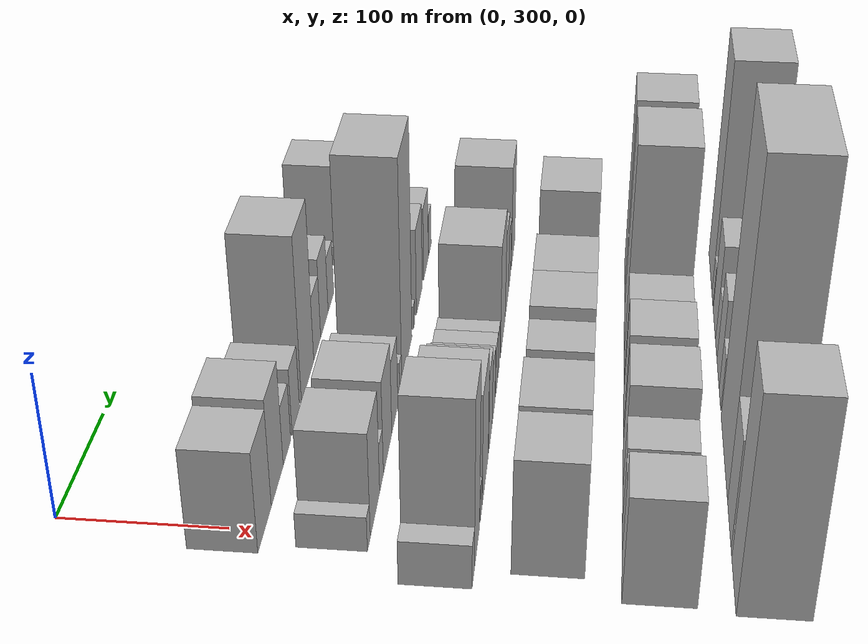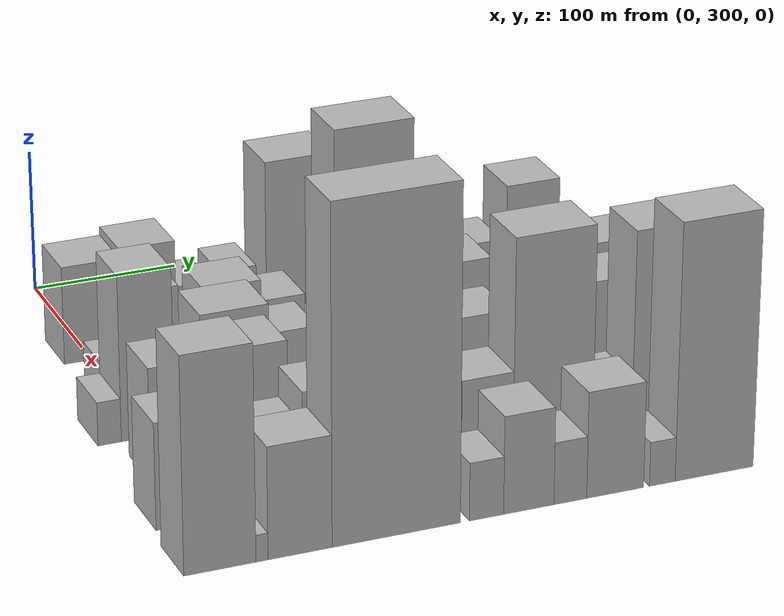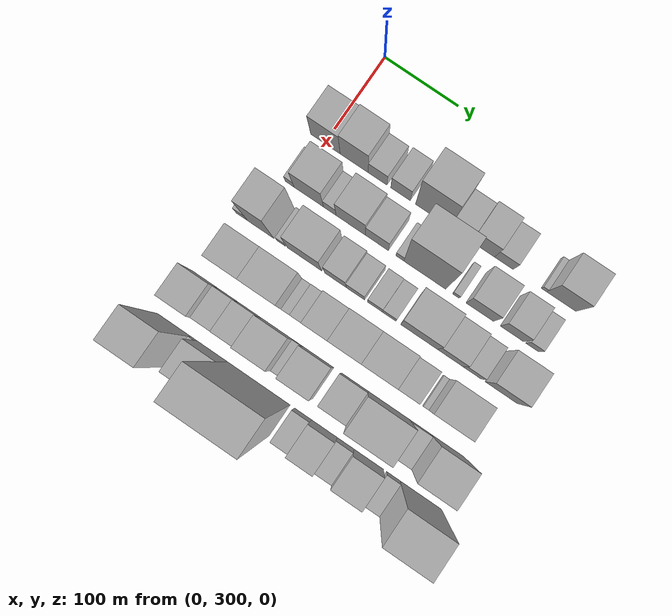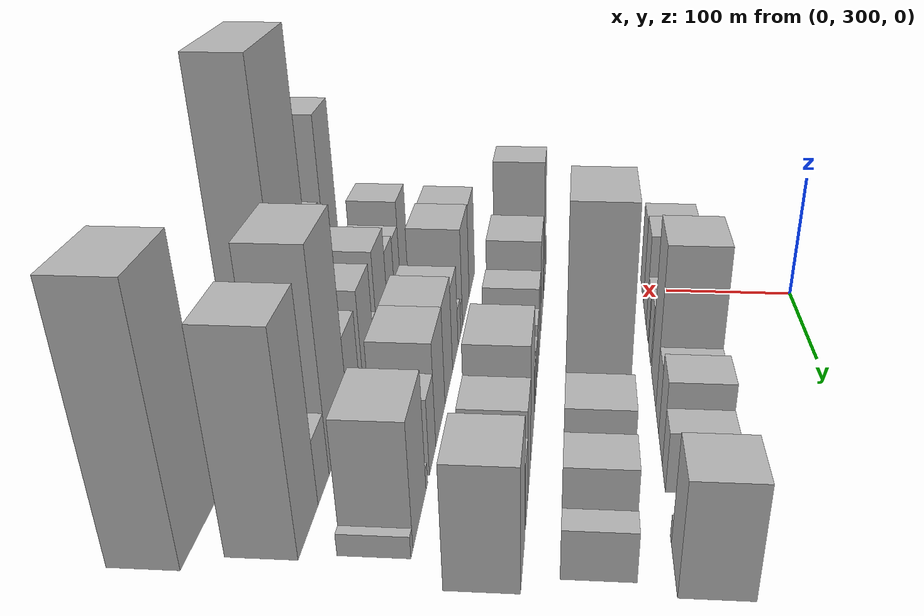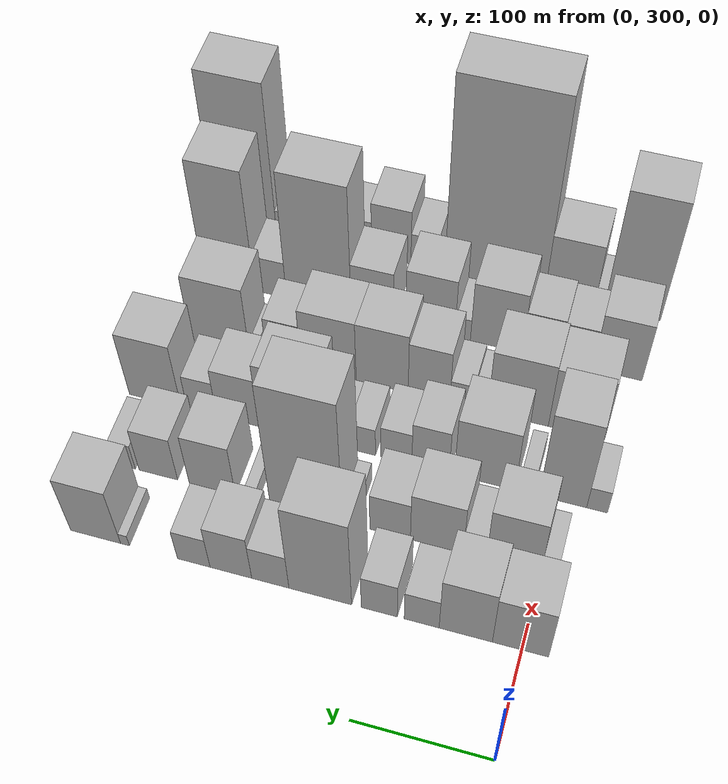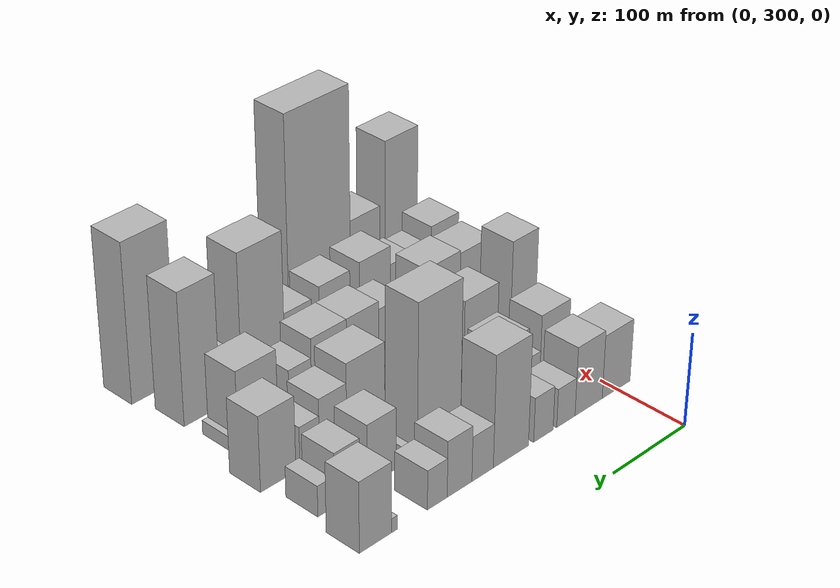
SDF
<sdf version="1.6">
 <world name="default">
  <model name="building_36">
   <static>1</static>
   <pose>100.0000 301.1761 0 0.000000 0.000000 0.000000</pose>
   <link name="link">
    <pose>0 0 34.50 0 0 0</pose>
    <collision name="collision"><geometry><box><size>40.0000 39.7738 69.0000</size></box></geometry></collision>
    <visual name="visual">
     <cast_shadows>0</cast_shadows>
     <geometry><box><size>40.0000 39.7738 69.0000</size></box></geometry>
     <material>
      <script>
       <uri>model://HANNAS_wall/materials/scripts</uri>
       <uri>model://HANNAS_wall/materials/textures</uri>
       <name>vrc/HANNAS_wall</name>
      </script>
     </material>
    </visual>
   </link>
  </model>
  <model name="building_37">
   <static>1</static>
   <pose>100.0000 340.0397 0 0.000000 0.000000 0.000000</pose>
   <link name="link">
    <pose>0 0 37.50 0 0 0</pose>
    <collision name="collision"><geometry><box><size>40.0000 37.9533 75.0000</size></box></geometry></collision>
    <visual name="visual">
     <cast_shadows>0</cast_shadows>
     <geometry><box><size>40.0000 37.9533 75.0000</size></box></geometry>
     <material>
      <script>
       <uri>model://HANNAS_wall/materials/scripts</uri>
       <uri>model://HANNAS_wall/materials/textures</uri>
       <name>vrc/HANNAS_wall</name>
      </script>
     </material>
    </visual>
   </link>
  </model>
  <model name="building_38">
   <static>1</static>
   <pose>100.0000 371.5802 0 0.000000 0.000000 0.000000</pose>
   <link name="link">
    <pose>0 0 21.00 0 0 0</pose>
    <collision name="collision"><geometry><box><size>40.0000 25.1276 42.0000</size></box></geometry></collision>
    <visual name="visual">
     <cast_shadows>0</cast_shadows>
     <geometry><box><size>40.0000 25.1276 42.0000</size></box></geometry>
     <material>
      <script>
       <uri>model://HANNAS_wall/materials/scripts</uri>
       <uri>model://HANNAS_wall/materials/textures</uri>
       <name>vrc/HANNAS_wall</name>
      </script>
     </material>
    </visual>
   </link>
  </model>
  <model name="building_39">
   <static>1</static>
   <pose>100.0000 402.2355 0 0.000000 0.000000 0.000000</pose>
   <link name="link">
    <pose>0 0 24.00 0 0 0</pose>
    <collision name="collision"><geometry><box><size>40.0000 26.1829 48.0000</size></box></geometry></collision>
    <visual name="visual">
     <cast_shadows>0</cast_shadows>
     <geometry><box><size>40.0000 26.1829 48.0000</size></box></geometry>
     <material>
      <script>
       <uri>model://HANNAS_wall/materials/scripts</uri>
       <uri>model://HANNAS_wall/materials/textures</uri>
       <name>vrc/HANNAS_wall</name>
      </script>
     </material>
    </visual>
   </link>
  </model>
  <model name="building_40">
   <static>1</static>
   <pose>100.0000 445.4357 0 0.000000 0.000000 0.000000</pose>
   <link name="link">
    <pose>0 0 60.00 0 0 0</pose>
    <collision name="collision"><geometry><box><size>40.0000 46.2174 120.0000</size></box></geometry></collision>
    <visual name="visual">
     <cast_shadows>0</cast_shadows>
     <geometry><box><size>40.0000 46.2174 120.0000</size></box></geometry>
     <material>
      <script>
       <uri>model://HANNAS_wall/materials/scripts</uri>
       <uri>model://HANNAS_wall/materials/textures</uri>
       <name>vrc/HANNAS_wall</name>
      </script>
     </material>
    </visual>
   </link>
  </model>
  <model name="building_41">
   <static>1</static>
   <pose>100.0000 482.3747 0 0.000000 0.000000 0.000000</pose>
   <link name="link">
    <pose>0 0 24.00 0 0 0</pose>
    <collision name="collision"><geometry><box><size>40.0000 27.6606 48.0000</size></box></geometry></collision>
    <visual name="visual">
     <cast_shadows>0</cast_shadows>
     <geometry><box><size>40.0000 27.6606 48.0000</size></box></geometry>
     <material>
      <script>
       <uri>model://HANNAS_wall/materials/scripts</uri>
       <uri>model://HANNAS_wall/materials/textures</uri>
       <name>vrc/HANNAS_wall</name>
      </script>
     </material>
    </visual>
   </link>
  </model>
  <model name="building_42">
   <static>1</static>
   <pose>100.0000 511.8867 0 0.000000 0.000000 0.000000</pose>
   <link name="link">
    <pose>0 0 30.00 0 0 0</pose>
    <collision name="collision"><geometry><box><size>40.0000 31.3634 60.0000</size></box></geometry></collision>
    <visual name="visual">
     <cast_shadows>0</cast_shadows>
     <geometry><box><size>40.0000 31.3634 60.0000</size></box></geometry>
     <material>
      <script>
       <uri>model://HANNAS_wall/materials/scripts</uri>
       <uri>model://HANNAS_wall/materials/textures</uri>
       <name>vrc/HANNAS_wall</name>
      </script>
     </material>
    </visual>
   </link>
  </model>
  <model name="building_43">
   <static>1</static>
   <pose>100.0000 539.8945 0 0.000000 0.000000 0.000000</pose>
   <link name="link">
    <pose>0 0 21.00 0 0 0</pose>
    <collision name="collision"><geometry><box><size>40.0000 24.6521 42.0000</size></box></geometry></collision>
    <visual name="visual">
     <cast_shadows>0</cast_shadows>
     <geometry><box><size>40.0000 24.6521 42.0000</size></box></geometry>
     <material>
      <script>
       <uri>model://HANNAS_wall/materials/scripts</uri>
       <uri>model://HANNAS_wall/materials/textures</uri>
       <name>vrc/HANNAS_wall</name>
      </script>
     </material>
    </visual>
   </link>
  </model>
  <model name="building_44">
   <static>1</static>
   <pose>100.0000 592.3509 0 0.000000 0.000000 0.000000</pose>
   <link name="link">
    <pose>0 0 7.50 0 0 0</pose>
    <collision name="collision"><geometry><box><size>40.0000 6.7535 15.0000</size></box></geometry></collision>
    <visual name="visual">
     <cast_shadows>0</cast_shadows>
     <geometry><box><size>40.0000 6.7535 15.0000</size></box></geometry>
     <material>
      <script>
       <uri>model://HANNAS_wall/materials/scripts</uri>
       <uri>model://HANNAS_wall/materials/textures</uri>
       <name>vrc/HANNAS_wall</name>
      </script>
     </material>
    </visual>
   </link>
  </model>
  <model name="building_45">
   <static>1</static>
   <pose>100.0000 615.0703 0 0.000000 0.000000 0.000000</pose>
   <link name="link">
    <pose>0 0 37.50 0 0 0</pose>
    <collision name="collision"><geometry><box><size>40.0000 38.6853 75.0000</size></box></geometry></collision>
    <visual name="visual">
     <cast_shadows>0</cast_shadows>
     <geometry><box><size>40.0000 38.6853 75.0000</size></box></geometry>
     <material>
      <script>
       <uri>model://HANNAS_wall/materials/scripts</uri>
       <uri>model://HANNAS_wall/materials/textures</uri>
       <name>vrc/HANNAS_wall</name>
      </script>
     </material>
    </visual>
   </link>
  </model>
  <model name="building_89">
   <static>1</static>
   <pose>160.0000 294.1073 0 0.000000 0.000000 0.000000</pose>
   <link name="link">
    <pose>0 0 12.00 0 0 0</pose>
    <collision name="collision"><geometry><box><size>40.0000 11.7521 24.0000</size></box></geometry></collision>
    <visual name="visual">
     <cast_shadows>0</cast_shadows>
     <geometry><box><size>40.0000 11.7521 24.0000</size></box></geometry>
     <material>
      <script>
       <uri>model://HANNAS_wall/materials/scripts</uri>
       <uri>model://HANNAS_wall/materials/textures</uri>
       <name>vrc/HANNAS_wall</name>
      </script>
     </material>
    </visual>
   </link>
  </model>
  <model name="building_90">
   <static>1</static>
   <pose>160.0000 319.9090 0 0.000000 0.000000 0.000000</pose>
   <link name="link">
    <pose>0 0 36.00 0 0 0</pose>
    <collision name="collision"><geometry><box><size>40.0000 39.8512 72.0000</size></box></geometry></collision>
    <visual name="visual">
     <cast_shadows>0</cast_shadows>
     <geometry><box><size>40.0000 39.8512 72.0000</size></box></geometry>
     <material>
      <script>
       <uri>model://HANNAS_wall/materials/scripts</uri>
       <uri>model://HANNAS_wall/materials/textures</uri>
       <name>vrc/HANNAS_wall</name>
      </script>
     </material>
    </visual>
   </link>
  </model>
  <model name="building_91">
   <static>1</static>
   <pose>160.0000 348.3207 0 0.000000 0.000000 0.000000</pose>
   <link name="link">
    <pose>0 0 16.50 0 0 0</pose>
    <collision name="collision"><geometry><box><size>40.0000 16.9724 33.0000</size></box></geometry></collision>
    <visual name="visual">
     <cast_shadows>0</cast_shadows>
     <geometry><box><size>40.0000 16.9724 33.0000</size></box></geometry>
     <material>
      <script>
       <uri>model://HANNAS_wall/materials/scripts</uri>
       <uri>model://HANNAS_wall/materials/textures</uri>
       <name>vrc/HANNAS_wall</name>
      </script>
     </material>
    </visual>
   </link>
  </model>
  <model name="building_92">
   <static>1</static>
   <pose>160.0000 376.4871 0 0.000000 0.000000 0.000000</pose>
   <link name="link">
    <pose>0 0 33.00 0 0 0</pose>
    <collision name="collision"><geometry><box><size>40.0000 39.3603 66.0000</size></box></geometry></collision>
    <visual name="visual">
     <cast_shadows>0</cast_shadows>
     <geometry><box><size>40.0000 39.3603 66.0000</size></box></geometry>
     <material>
      <script>
       <uri>model://HANNAS_wall/materials/scripts</uri>
       <uri>model://HANNAS_wall/materials/textures</uri>
       <name>vrc/HANNAS_wall</name>
      </script>
     </material>
    </visual>
   </link>
  </model>
  <model name="building_93">
   <static>1</static>
   <pose>160.0000 411.3429 0 0.000000 0.000000 0.000000</pose>
   <link name="link">
    <pose>0 0 25.50 0 0 0</pose>
    <collision name="collision"><geometry><box><size>40.0000 30.3515 51.0000</size></box></geometry></collision>
    <visual name="visual">
     <cast_shadows>0</cast_shadows>
     <geometry><box><size>40.0000 30.3515 51.0000</size></box></geometry>
     <material>
      <script>
       <uri>model://HANNAS_wall/materials/scripts</uri>
       <uri>model://HANNAS_wall/materials/textures</uri>
       <name>vrc/HANNAS_wall</name>
      </script>
     </material>
    </visual>
   </link>
  </model>
  <model name="building_94">
   <static>1</static>
   <pose>160.0000 441.8190 0 0.000000 0.000000 0.000000</pose>
   <link name="link">
    <pose>0 0 12.00 0 0 0</pose>
    <collision name="collision"><geometry><box><size>40.0000 10.6007 24.0000</size></box></geometry></collision>
    <visual name="visual">
     <cast_shadows>0</cast_shadows>
     <geometry><box><size>40.0000 10.6007 24.0000</size></box></geometry>
     <material>
      <script>
       <uri>model://HANNAS_wall/materials/scripts</uri>
       <uri>model://HANNAS_wall/materials/textures</uri>
       <name>vrc/HANNAS_wall</name>
      </script>
     </material>
    </visual>
   </link>
  </model>
  <model name="building_95">
   <static>1</static>
   <pose>160.0000 474.8676 0 0.000000 0.000000 0.000000</pose>
   <link name="link">
    <pose>0 0 81.00 0 0 0</pose>
    <collision name="collision"><geometry><box><size>40.0000 55.4965 162.0000</size></box></geometry></collision>
    <visual name="visual">
     <cast_shadows>0</cast_shadows>
     <geometry><box><size>40.0000 55.4965 162.0000</size></box></geometry>
     <material>
      <script>
       <uri>model://HANNAS_wall/materials/scripts</uri>
       <uri>model://HANNAS_wall/materials/textures</uri>
       <name>vrc/HANNAS_wall</name>
      </script>
     </material>
    </visual>
   </link>
  </model>
  <model name="building_96">
   <static>1</static>
   <pose>160.0000 516.0368 0 0.000000 0.000000 0.000000</pose>
   <link name="link">
    <pose>0 0 9.00 0 0 0</pose>
    <collision name="collision"><geometry><box><size>40.0000 8.8418 18.0000</size></box></geometry></collision>
    <visual name="visual">
     <cast_shadows>0</cast_shadows>
     <geometry><box><size>40.0000 8.8418 18.0000</size></box></geometry>
     <material>
      <script>
       <uri>model://HANNAS_wall/materials/scripts</uri>
       <uri>model://HANNAS_wall/materials/textures</uri>
       <name>vrc/HANNAS_wall</name>
      </script>
     </material>
    </visual>
   </link>
  </model>
  <model name="building_97">
   <static>1</static>
   <pose>160.0000 547.5140 0 0.000000 0.000000 0.000000</pose>
   <link name="link">
    <pose>0 0 33.00 0 0 0</pose>
    <collision name="collision"><geometry><box><size>40.0000 36.1126 66.0000</size></box></geometry></collision>
    <visual name="visual">
     <cast_shadows>0</cast_shadows>
     <geometry><box><size>40.0000 36.1126 66.0000</size></box></geometry>
     <material>
      <script>
       <uri>model://HANNAS_wall/materials/scripts</uri>
       <uri>model://HANNAS_wall/materials/textures</uri>
       <name>vrc/HANNAS_wall</name>
      </script>
     </material>
    </visual>
   </link>
  </model>
  <model name="building_98">
   <static>1</static>
   <pose>160.0000 589.7904 0 0.000000 0.000000 0.000000</pose>
   <link name="link">
    <pose>0 0 28.50 0 0 0</pose>
    <collision name="collision"><geometry><box><size>40.0000 30.4400 57.0000</size></box></geometry></collision>
    <visual name="visual">
     <cast_shadows>0</cast_shadows>
     <geometry><box><size>40.0000 30.4400 57.0000</size></box></geometry>
     <material>
      <script>
       <uri>model://HANNAS_wall/materials/scripts</uri>
       <uri>model://HANNAS_wall/materials/textures</uri>
       <name>vrc/HANNAS_wall</name>
      </script>
     </material>
    </visual>
   </link>
  </model>
  <model name="building_99">
   <static>1</static>
   <pose>160.0000 616.4857 0 0.000000 0.000000 0.000000</pose>
   <link name="link">
    <pose>0 0 16.50 0 0 0</pose>
    <collision name="collision"><geometry><box><size>40.0000 16.9507 33.0000</size></box></geometry></collision>
    <visual name="visual">
     <cast_shadows>0</cast_shadows>
     <geometry><box><size>40.0000 16.9507 33.0000</size></box></geometry>
     <material>
      <script>
       <uri>model://HANNAS_wall/materials/scripts</uri>
       <uri>model://HANNAS_wall/materials/textures</uri>
       <name>vrc/HANNAS_wall</name>
      </script>
     </material>
    </visual>
   </link>
  </model>
  <model name="building_143">
   <static>1</static>
   <pose>220.0000 271.3811 0 0.000000 0.000000 0.000000</pose>
   <link name="link">
    <pose>0 0 15.00 0 0 0</pose>
    <collision name="collision"><geometry><box><size>40.0000 15.4615 30.0000</size></box></geometry></collision>
    <visual name="visual">
     <cast_shadows>0</cast_shadows>
     <geometry><box><size>40.0000 15.4615 30.0000</size></box></geometry>
     <material>
      <script>
       <uri>model://HANNAS_wall/materials/scripts</uri>
       <uri>model://HANNAS_wall/materials/textures</uri>
       <name>vrc/HANNAS_wall</name>
      </script>
     </material>
    </visual>
   </link>
  </model>
  <model name="building_144">
   <static>1</static>
   <pose>220.0000 296.8147 0 0.000000 0.000000 0.000000</pose>
   <link name="link">
    <pose>0 0 57.00 0 0 0</pose>
    <collision name="collision"><geometry><box><size>40.0000 35.4057 114.0000</size></box></geometry></collision>
    <visual name="visual">
     <cast_shadows>0</cast_shadows>
     <geometry><box><size>40.0000 35.4057 114.0000</size></box></geometry>
     <material>
      <script>
       <uri>model://HANNAS_wall/materials/scripts</uri>
       <uri>model://HANNAS_wall/materials/textures</uri>
       <name>vrc/HANNAS_wall</name>
      </script>
     </material>
    </visual>
   </link>
  </model>
  <model name="building_145">
   <static>1</static>
   <pose>220.0000 324.1452 0 0.000000 0.000000 0.000000</pose>
   <link name="link">
    <pose>0 0 12.00 0 0 0</pose>
    <collision name="collision"><geometry><box><size>40.0000 11.2553 24.0000</size></box></geometry></collision>
    <visual name="visual">
     <cast_shadows>0</cast_shadows>
     <geometry><box><size>40.0000 11.2553 24.0000</size></box></geometry>
     <material>
      <script>
       <uri>model://HANNAS_wall/materials/scripts</uri>
       <uri>model://HANNAS_wall/materials/textures</uri>
       <name>vrc/HANNAS_wall</name>
      </script>
     </material>
    </visual>
   </link>
  </model>
  <model name="building_146">
   <static>1</static>
   <pose>220.0000 355.7716 0 0.000000 0.000000 0.000000</pose>
   <link name="link">
    <pose>0 0 39.00 0 0 0</pose>
    <collision name="collision"><geometry><box><size>40.0000 45.9975 78.0000</size></box></geometry></collision>
    <visual name="visual">
     <cast_shadows>0</cast_shadows>
     <geometry><box><size>40.0000 45.9975 78.0000</size></box></geometry>
     <material>
      <script>
       <uri>model://HANNAS_wall/materials/scripts</uri>
       <uri>model://HANNAS_wall/materials/textures</uri>
       <name>vrc/HANNAS_wall</name>
      </script>
     </material>
    </visual>
   </link>
  </model>
  <model name="building_147">
   <static>1</static>
   <pose>220.0000 397.1388 0 0.000000 0.000000 0.000000</pose>
   <link name="link">
    <pose>0 0 28.50 0 0 0</pose>
    <collision name="collision"><geometry><box><size>40.0000 28.7367 57.0000</size></box></geometry></collision>
    <visual name="visual">
     <cast_shadows>0</cast_shadows>
     <geometry><box><size>40.0000 28.7367 57.0000</size></box></geometry>
     <material>
      <script>
       <uri>model://HANNAS_wall/materials/scripts</uri>
       <uri>model://HANNAS_wall/materials/textures</uri>
       <name>vrc/HANNAS_wall</name>
      </script>
     </material>
    </visual>
   </link>
  </model>
  <model name="building_148">
   <static>1</static>
   <pose>220.0000 423.5672 0 0.000000 0.000000 0.000000</pose>
   <link name="link">
    <pose>0 0 21.00 0 0 0</pose>
    <collision name="collision"><geometry><box><size>40.0000 24.1201 42.0000</size></box></geometry></collision>
    <visual name="visual">
     <cast_shadows>0</cast_shadows>
     <geometry><box><size>40.0000 24.1201 42.0000</size></box></geometry>
     <material>
      <script>
       <uri>model://HANNAS_wall/materials/scripts</uri>
       <uri>model://HANNAS_wall/materials/textures</uri>
       <name>vrc/HANNAS_wall</name>
      </script>
     </material>
    </visual>
   </link>
  </model>
  <model name="building_149">
   <static>1</static>
   <pose>220.0000 449.4781 0 0.000000 0.000000 0.000000</pose>
   <link name="link">
    <pose>0 0 18.00 0 0 0</pose>
    <collision name="collision"><geometry><box><size>40.0000 19.7016 36.0000</size></box></geometry></collision>
    <visual name="visual">
     <cast_shadows>0</cast_shadows>
     <geometry><box><size>40.0000 19.7016 36.0000</size></box></geometry>
     <material>
      <script>
       <uri>model://HANNAS_wall/materials/scripts</uri>
       <uri>model://HANNAS_wall/materials/textures</uri>
       <name>vrc/HANNAS_wall</name>
      </script>
     </material>
    </visual>
   </link>
  </model>
  <model name="building_150">
   <static>1</static>
   <pose>220.0000 468.2743 0 0.000000 0.000000 0.000000</pose>
   <link name="link">
    <pose>0 0 16.50 0 0 0</pose>
    <collision name="collision"><geometry><box><size>40.0000 17.8909 33.0000</size></box></geometry></collision>
    <visual name="visual">
     <cast_shadows>0</cast_shadows>
     <geometry><box><size>40.0000 17.8909 33.0000</size></box></geometry>
     <material>
      <script>
       <uri>model://HANNAS_wall/materials/scripts</uri>
       <uri>model://HANNAS_wall/materials/textures</uri>
       <name>vrc/HANNAS_wall</name>
      </script>
     </material>
    </visual>
   </link>
  </model>
  <model name="building_151">
   <static>1</static>
   <pose>220.0000 507.3803 0 0.000000 0.000000 0.000000</pose>
   <link name="link">
    <pose>0 0 42.00 0 0 0</pose>
    <collision name="collision"><geometry><box><size>40.0000 48.3211 84.0000</size></box></geometry></collision>
    <visual name="visual">
     <cast_shadows>0</cast_shadows>
     <geometry><box><size>40.0000 48.3211 84.0000</size></box></geometry>
     <material>
      <script>
       <uri>model://HANNAS_wall/materials/scripts</uri>
       <uri>model://HANNAS_wall/materials/textures</uri>
       <name>vrc/HANNAS_wall</name>
      </script>
     </material>
    </visual>
   </link>
  </model>
  <model name="building_152">
   <static>1</static>
   <pose>220.0000 548.4777 0 0.000000 0.000000 0.000000</pose>
   <link name="link">
    <pose>0 0 31.50 0 0 0</pose>
    <collision name="collision"><geometry><box><size>40.0000 33.8736 63.0000</size></box></geometry></collision>
    <visual name="visual">
     <cast_shadows>0</cast_shadows>
     <geometry><box><size>40.0000 33.8736 63.0000</size></box></geometry>
     <material>
      <script>
       <uri>model://HANNAS_wall/materials/scripts</uri>
       <uri>model://HANNAS_wall/materials/textures</uri>
       <name>vrc/HANNAS_wall</name>
      </script>
     </material>
    </visual>
   </link>
  </model>
  <model name="building_153">
   <static>1</static>
   <pose>220.0000 577.2944 0 0.000000 0.000000 0.000000</pose>
   <link name="link">
    <pose>0 0 22.50 0 0 0</pose>
    <collision name="collision"><geometry><box><size>40.0000 23.7598 45.0000</size></box></geometry></collision>
    <visual name="visual">
     <cast_shadows>0</cast_shadows>
     <geometry><box><size>40.0000 23.7598 45.0000</size></box></geometry>
     <material>
      <script>
       <uri>model://HANNAS_wall/materials/scripts</uri>
       <uri>model://HANNAS_wall/materials/textures</uri>
       <name>vrc/HANNAS_wall</name>
      </script>
     </material>
    </visual>
   </link>
  </model>
  <model name="building_154">
   <static>1</static>
   <pose>220.0000 615.2557 0 0.000000 0.000000 0.000000</pose>
   <link name="link">
    <pose>0 0 40.50 0 0 0</pose>
    <collision name="collision"><geometry><box><size>40.0000 42.1629 81.0000</size></box></geometry></collision>
    <visual name="visual">
     <cast_shadows>0</cast_shadows>
     <geometry><box><size>40.0000 42.1629 81.0000</size></box></geometry>
     <material>
      <script>
       <uri>model://HANNAS_wall/materials/scripts</uri>
       <uri>model://HANNAS_wall/materials/textures</uri>
       <name>vrc/HANNAS_wall</name>
      </script>
     </material>
    </visual>
   </link>
  </model>
  <model name="building_197">
   <static>1</static>
   <pose>280.0000 299.0818 0 0.000000 0.000000 0.000000</pose>
   <link name="link">
    <pose>0 0 39.00 0 0 0</pose>
    <collision name="collision"><geometry><box><size>40.0000 43.4497 78.0000</size></box></geometry></collision>
    <visual name="visual">
     <cast_shadows>0</cast_shadows>
     <geometry><box><size>40.0000 43.4497 78.0000</size></box></geometry>
     <material>
      <script>
       <uri>model://HANNAS_wall/materials/scripts</uri>
       <uri>model://HANNAS_wall/materials/textures</uri>
       <name>vrc/HANNAS_wall</name>
      </script>
     </material>
    </visual>
   </link>
  </model>
  <model name="building_198">
   <static>1</static>
   <pose>280.0000 344.4291 0 0.000000 0.000000 0.000000</pose>
   <link name="link">
    <pose>0 0 40.50 0 0 0</pose>
    <collision name="collision"><geometry><box><size>40.0000 47.2448 81.0000</size></box></geometry></collision>
    <visual name="visual">
     <cast_shadows>0</cast_shadows>
     <geometry><box><size>40.0000 47.2448 81.0000</size></box></geometry>
     <material>
      <script>
       <uri>model://HANNAS_wall/materials/scripts</uri>
       <uri>model://HANNAS_wall/materials/textures</uri>
       <name>vrc/HANNAS_wall</name>
      </script>
     </material>
    </visual>
   </link>
  </model>
  <model name="building_199">
   <static>1</static>
   <pose>280.0000 373.8952 0 0.000000 0.000000 0.000000</pose>
   <link name="link">
    <pose>0 0 12.00 0 0 0</pose>
    <collision name="collision"><geometry><box><size>40.0000 11.6874 24.0000</size></box></geometry></collision>
    <visual name="visual">
     <cast_shadows>0</cast_shadows>
     <geometry><box><size>40.0000 11.6874 24.0000</size></box></geometry>
     <material>
      <script>
       <uri>model://HANNAS_wall/materials/scripts</uri>
       <uri>model://HANNAS_wall/materials/textures</uri>
       <name>vrc/HANNAS_wall</name>
      </script>
     </material>
    </visual>
   </link>
  </model>
  <model name="building_200">
   <static>1</static>
   <pose>280.0000 388.7388 0 0.000000 0.000000 0.000000</pose>
   <link name="link">
    <pose>0 0 15.00 0 0 0</pose>
    <collision name="collision"><geometry><box><size>40.0000 18.0000 30.0000</size></box></geometry></collision>
    <visual name="visual">
     <cast_shadows>0</cast_shadows>
     <geometry><box><size>40.0000 18.0000 30.0000</size></box></geometry>
     <material>
      <script>
       <uri>model://HANNAS_wall/materials/scripts</uri>
       <uri>model://HANNAS_wall/materials/textures</uri>
       <name>vrc/HANNAS_wall</name>
      </script>
     </material>
    </visual>
   </link>
  </model>
  <model name="building_201">
   <static>1</static>
   <pose>280.0000 414.3065 0 0.000000 0.000000 0.000000</pose>
   <link name="link">
    <pose>0 0 33.00 0 0 0</pose>
    <collision name="collision"><geometry><box><size>40.0000 33.1354 66.0000</size></box></geometry></collision>
    <visual name="visual">
     <cast_shadows>0</cast_shadows>
     <geometry><box><size>40.0000 33.1354 66.0000</size></box></geometry>
     <material>
      <script>
       <uri>model://HANNAS_wall/materials/scripts</uri>
       <uri>model://HANNAS_wall/materials/textures</uri>
       <name>vrc/HANNAS_wall</name>
      </script>
     </material>
    </visual>
   </link>
  </model>
  <model name="building_202">
   <static>1</static>
   <pose>280.0000 451.6990 0 0.000000 0.000000 0.000000</pose>
   <link name="link">
    <pose>0 0 37.50 0 0 0</pose>
    <collision name="collision"><geometry><box><size>40.0000 41.6497 75.0000</size></box></geometry></collision>
    <visual name="visual">
     <cast_shadows>0</cast_shadows>
     <geometry><box><size>40.0000 41.6497 75.0000</size></box></geometry>
     <material>
      <script>
       <uri>model://HANNAS_wall/materials/scripts</uri>
       <uri>model://HANNAS_wall/materials/textures</uri>
       <name>vrc/HANNAS_wall</name>
      </script>
     </material>
    </visual>
   </link>
  </model>
  <model name="building_203">
   <static>1</static>
   <pose>280.0000 494.9137 0 0.000000 0.000000 0.000000</pose>
   <link name="link">
    <pose>0 0 37.50 0 0 0</pose>
    <collision name="collision"><geometry><box><size>40.0000 44.7796 75.0000</size></box></geometry></collision>
    <visual name="visual">
     <cast_shadows>0</cast_shadows>
     <geometry><box><size>40.0000 44.7796 75.0000</size></box></geometry>
     <material>
      <script>
       <uri>model://HANNAS_wall/materials/scripts</uri>
       <uri>model://HANNAS_wall/materials/textures</uri>
       <name>vrc/HANNAS_wall</name>
      </script>
     </material>
    </visual>
   </link>
  </model>
  <model name="building_204">
   <static>1</static>
   <pose>280.0000 531.3539 0 0.000000 0.000000 0.000000</pose>
   <link name="link">
    <pose>0 0 27.00 0 0 0</pose>
    <collision name="collision"><geometry><box><size>40.0000 28.1009 54.0000</size></box></geometry></collision>
    <visual name="visual">
     <cast_shadows>0</cast_shadows>
     <geometry><box><size>40.0000 28.1009 54.0000</size></box></geometry>
     <material>
      <script>
       <uri>model://HANNAS_wall/materials/scripts</uri>
       <uri>model://HANNAS_wall/materials/textures</uri>
       <name>vrc/HANNAS_wall</name>
      </script>
     </material>
    </visual>
   </link>
  </model>
  <model name="building_205">
   <static>1</static>
   <pose>280.0000 555.9577 0 0.000000 0.000000 0.000000</pose>
   <link name="link">
    <pose>0 0 7.50 0 0 0</pose>
    <collision name="collision"><geometry><box><size>40.0000 7.1067 15.0000</size></box></geometry></collision>
    <visual name="visual">
     <cast_shadows>0</cast_shadows>
     <geometry><box><size>40.0000 7.1067 15.0000</size></box></geometry>
     <material>
      <script>
       <uri>model://HANNAS_wall/materials/scripts</uri>
       <uri>model://HANNAS_wall/materials/textures</uri>
       <name>vrc/HANNAS_wall</name>
      </script>
     </material>
    </visual>
   </link>
  </model>
  <model name="building_206">
   <static>1</static>
   <pose>280.0000 583.7308 0 0.000000 0.000000 0.000000</pose>
   <link name="link">
    <pose>0 0 42.00 0 0 0</pose>
    <collision name="collision"><geometry><box><size>40.0000 48.4394 84.0000</size></box></geometry></collision>
    <visual name="visual">
     <cast_shadows>0</cast_shadows>
     <geometry><box><size>40.0000 48.4394 84.0000</size></box></geometry>
     <material>
      <script>
       <uri>model://HANNAS_wall/materials/scripts</uri>
       <uri>model://HANNAS_wall/materials/textures</uri>
       <name>vrc/HANNAS_wall</name>
      </script>
     </material>
    </visual>
   </link>
  </model>
  <model name="building_207">
   <static>1</static>
   <pose>280.0000 611.3502 0 0.000000 0.000000 0.000000</pose>
   <link name="link">
    <pose>0 0 7.50 0 0 0</pose>
    <collision name="collision"><geometry><box><size>40.0000 6.7994 15.0000</size></box></geometry></collision>
    <visual name="visual">
     <cast_shadows>0</cast_shadows>
     <geometry><box><size>40.0000 6.7994 15.0000</size></box></geometry>
     <material>
      <script>
       <uri>model://HANNAS_wall/materials/scripts</uri>
       <uri>model://HANNAS_wall/materials/textures</uri>
       <name>vrc/HANNAS_wall</name>
      </script>
     </material>
    </visual>
   </link>
  </model>
  <model name="building_247">
   <static>1</static>
   <pose>340.0000 279.0189 0 0.000000 0.000000 0.000000</pose>
   <link name="link">
    <pose>0 0 36.00 0 0 0</pose>
    <collision name="collision"><geometry><box><size>40.0000 38.4754 72.0000</size></box></geometry></collision>
    <visual name="visual">
     <cast_shadows>0</cast_shadows>
     <geometry><box><size>40.0000 38.4754 72.0000</size></box></geometry>
     <material>
      <script>
       <uri>model://HANNAS_wall/materials/scripts</uri>
       <uri>model://HANNAS_wall/materials/textures</uri>
       <name>vrc/HANNAS_wall</name>
      </script>
     </material>
    </visual>
   </link>
  </model>
  <model name="building_248">
   <static>1</static>
   <pose>340.0000 311.2127 0 0.000000 0.000000 0.000000</pose>
   <link name="link">
    <pose>0 0 25.50 0 0 0</pose>
    <collision name="collision"><geometry><box><size>40.0000 25.9124 51.0000</size></box></geometry></collision>
    <visual name="visual">
     <cast_shadows>0</cast_shadows>
     <geometry><box><size>40.0000 25.9124 51.0000</size></box></geometry>
     <material>
      <script>
       <uri>model://HANNAS_wall/materials/scripts</uri>
       <uri>model://HANNAS_wall/materials/textures</uri>
       <name>vrc/HANNAS_wall</name>
      </script>
     </material>
    </visual>
   </link>
  </model>
  <model name="building_249">
   <static>1</static>
   <pose>340.0000 339.3468 0 0.000000 0.000000 0.000000</pose>
   <link name="link">
    <pose>0 0 27.00 0 0 0</pose>
    <collision name="collision"><geometry><box><size>40.0000 30.3556 54.0000</size></box></geometry></collision>
    <visual name="visual">
     <cast_shadows>0</cast_shadows>
     <geometry><box><size>40.0000 30.3556 54.0000</size></box></geometry>
     <material>
      <script>
       <uri>model://HANNAS_wall/materials/scripts</uri>
       <uri>model://HANNAS_wall/materials/textures</uri>
       <name>vrc/HANNAS_wall</name>
      </script>
     </material>
    </visual>
   </link>
  </model>
  <model name="building_250">
   <static>1</static>
   <pose>340.0000 375.5700 0 0.000000 0.000000 0.000000</pose>
   <link name="link">
    <pose>0 0 37.50 0 0 0</pose>
    <collision name="collision"><geometry><box><size>40.0000 42.0908 75.0000</size></box></geometry></collision>
    <visual name="visual">
     <cast_shadows>0</cast_shadows>
     <geometry><box><size>40.0000 42.0908 75.0000</size></box></geometry>
     <material>
      <script>
       <uri>model://HANNAS_wall/materials/scripts</uri>
       <uri>model://HANNAS_wall/materials/textures</uri>
       <name>vrc/HANNAS_wall</name>
      </script>
     </material>
    </visual>
   </link>
  </model>
  <model name="building_251">
   <static>1</static>
   <pose>340.0000 402.9137 0 0.000000 0.000000 0.000000</pose>
   <link name="link">
    <pose>0 0 13.50 0 0 0</pose>
    <collision name="collision"><geometry><box><size>40.0000 12.5966 27.0000</size></box></geometry></collision>
    <visual name="visual">
     <cast_shadows>0</cast_shadows>
     <geometry><box><size>40.0000 12.5966 27.0000</size></box></geometry>
     <material>
      <script>
       <uri>model://HANNAS_wall/materials/scripts</uri>
       <uri>model://HANNAS_wall/materials/textures</uri>
       <name>vrc/HANNAS_wall</name>
      </script>
     </material>
    </visual>
   </link>
  </model>
  <model name="building_252">
   <static>1</static>
   <pose>340.0000 429.3645 0 0.000000 0.000000 0.000000</pose>
   <link name="link">
    <pose>0 0 36.00 0 0 0</pose>
    <collision name="collision"><geometry><box><size>40.0000 40.3049 72.0000</size></box></geometry></collision>
    <visual name="visual">
     <cast_shadows>0</cast_shadows>
     <geometry><box><size>40.0000 40.3049 72.0000</size></box></geometry>
     <material>
      <script>
       <uri>model://HANNAS_wall/materials/scripts</uri>
       <uri>model://HANNAS_wall/materials/textures</uri>
       <name>vrc/HANNAS_wall</name>
      </script>
     </material>
    </visual>
   </link>
  </model>
  <model name="building_253">
   <static>1</static>
   <pose>340.0000 477.0032 0 0.000000 0.000000 0.000000</pose>
   <link name="link">
    <pose>0 0 31.50 0 0 0</pose>
    <collision name="collision"><geometry><box><size>40.0000 34.9724 63.0000</size></box></geometry></collision>
    <visual name="visual">
     <cast_shadows>0</cast_shadows>
     <geometry><box><size>40.0000 34.9724 63.0000</size></box></geometry>
     <material>
      <script>
       <uri>model://HANNAS_wall/materials/scripts</uri>
       <uri>model://HANNAS_wall/materials/textures</uri>
       <name>vrc/HANNAS_wall</name>
      </script>
     </material>
    </visual>
   </link>
  </model>
  <model name="building_254">
   <static>1</static>
   <pose>340.0000 521.6097 0 0.000000 0.000000 0.000000</pose>
   <link name="link">
    <pose>0 0 76.50 0 0 0</pose>
    <collision name="collision"><geometry><box><size>40.0000 54.2405 153.0000</size></box></geometry></collision>
    <visual name="visual">
     <cast_shadows>0</cast_shadows>
     <geometry><box><size>40.0000 54.2405 153.0000</size></box></geometry>
     <material>
      <script>
       <uri>model://HANNAS_wall/materials/scripts</uri>
       <uri>model://HANNAS_wall/materials/textures</uri>
       <name>vrc/HANNAS_wall</name>
      </script>
     </material>
    </visual>
   </link>
  </model>
  <model name="building_255">
   <static>1</static>
   <pose>340.0000 562.2286 0 0.000000 0.000000 0.000000</pose>
   <link name="link">
    <pose>0 0 22.50 0 0 0</pose>
    <collision name="collision"><geometry><box><size>40.0000 26.9974 45.0000</size></box></geometry></collision>
    <visual name="visual">
     <cast_shadows>0</cast_shadows>
     <geometry><box><size>40.0000 26.9974 45.0000</size></box></geometry>
     <material>
      <script>
       <uri>model://HANNAS_wall/materials/scripts</uri>
       <uri>model://HANNAS_wall/materials/textures</uri>
       <name>vrc/HANNAS_wall</name>
      </script>
     </material>
    </visual>
   </link>
  </model>
  <model name="building_256">
   <static>1</static>
   <pose>340.0000 597.5375 0 0.000000 0.000000 0.000000</pose>
   <link name="link">
    <pose>0 0 72.00 0 0 0</pose>
    <collision name="collision"><geometry><box><size>40.0000 43.6204 144.0000</size></box></geometry></collision>
    <visual name="visual">
     <cast_shadows>0</cast_shadows>
     <geometry><box><size>40.0000 43.6204 144.0000</size></box></geometry>
     <material>
      <script>
       <uri>model://HANNAS_wall/materials/scripts</uri>
       <uri>model://HANNAS_wall/materials/textures</uri>
       <name>vrc/HANNAS_wall</name>
      </script>
     </material>
    </visual>
   </link>
  </model>
  <model name="building_300">
   <static>1</static>
   <pose>400.0000 278.5464 0 0.000000 0.000000 0.000000</pose>
   <link name="link">
    <pose>0 0 72.00 0 0 0</pose>
    <collision name="collision"><geometry><box><size>40.0000 45.4270 144.0000</size></box></geometry></collision>
    <visual name="visual">
     <cast_shadows>0</cast_shadows>
     <geometry><box><size>40.0000 45.4270 144.0000</size></box></geometry>
     <material>
      <script>
       <uri>model://HANNAS_wall/materials/scripts</uri>
       <uri>model://HANNAS_wall/materials/textures</uri>
       <name>vrc/HANNAS_wall</name>
      </script>
     </material>
    </visual>
   </link>
  </model>
  <model name="building_301">
   <static>1</static>
   <pose>400.0000 305.0895 0 0.000000 0.000000 0.000000</pose>
   <link name="link">
    <pose>0 0 9.00 0 0 0</pose>
    <collision name="collision"><geometry><box><size>40.0000 7.6593 18.0000</size></box></geometry></collision>
    <visual name="visual">
     <cast_shadows>0</cast_shadows>
     <geometry><box><size>40.0000 7.6593 18.0000</size></box></geometry>
     <material>
      <script>
       <uri>model://HANNAS_wall/materials/scripts</uri>
       <uri>model://HANNAS_wall/materials/textures</uri>
       <name>vrc/HANNAS_wall</name>
      </script>
     </material>
    </visual>
   </link>
  </model>
  <model name="building_302">
   <static>1</static>
   <pose>400.0000 329.3763 0 0.000000 0.000000 0.000000</pose>
   <link name="link">
    <pose>0 0 37.50 0 0 0</pose>
    <collision name="collision"><geometry><box><size>40.0000 40.9144 75.0000</size></box></geometry></collision>
    <visual name="visual">
     <cast_shadows>0</cast_shadows>
     <geometry><box><size>40.0000 40.9144 75.0000</size></box></geometry>
     <material>
      <script>
       <uri>model://HANNAS_wall/materials/scripts</uri>
       <uri>model://HANNAS_wall/materials/textures</uri>
       <name>vrc/HANNAS_wall</name>
      </script>
     </material>
    </visual>
   </link>
  </model>
  <model name="building_303">
   <static>1</static>
   <pose>400.0000 391.4599 0 0.000000 0.000000 0.000000</pose>
   <link name="link">
    <pose>0 0 112.50 0 0 0</pose>
    <collision name="collision"><geometry><box><size>40.0000 83.2527 225.0000</size></box></geometry></collision>
    <visual name="visual">
     <cast_shadows>0</cast_shadows>
     <geometry><box><size>40.0000 83.2527 225.0000</size></box></geometry>
     <material>
      <script>
       <uri>model://HANNAS_wall/materials/scripts</uri>
       <uri>model://HANNAS_wall/materials/textures</uri>
       <name>vrc/HANNAS_wall</name>
      </script>
     </material>
    </visual>
   </link>
  </model>
  <model name="building_304">
   <static>1</static>
   <pose>400.0000 450.3621 0 0.000000 0.000000 0.000000</pose>
   <link name="link">
    <pose>0 0 19.50 0 0 0</pose>
    <collision name="collision"><geometry><box><size>40.0000 22.5518 39.0000</size></box></geometry></collision>
    <visual name="visual">
     <cast_shadows>0</cast_shadows>
     <geometry><box><size>40.0000 22.5518 39.0000</size></box></geometry>
     <material>
      <script>
       <uri>model://HANNAS_wall/materials/scripts</uri>
       <uri>model://HANNAS_wall/materials/textures</uri>
       <name>vrc/HANNAS_wall</name>
      </script>
     </material>
    </visual>
   </link>
  </model>
  <model name="building_305">
   <static>1</static>
   <pose>400.0000 478.3494 0 0.000000 0.000000 0.000000</pose>
   <link name="link">
    <pose>0 0 33.00 0 0 0</pose>
    <collision name="collision"><geometry><box><size>40.0000 33.4229 66.0000</size></box></geometry></collision>
    <visual name="visual">
     <cast_shadows>0</cast_shadows>
     <geometry><box><size>40.0000 33.4229 66.0000</size></box></geometry>
     <material>
      <script>
       <uri>model://HANNAS_wall/materials/scripts</uri>
       <uri>model://HANNAS_wall/materials/textures</uri>
       <name>vrc/HANNAS_wall</name>
      </script>
     </material>
    </visual>
   </link>
  </model>
  <model name="building_306">
   <static>1</static>
   <pose>400.0000 506.0180 0 0.000000 0.000000 0.000000</pose>
   <link name="link">
    <pose>0 0 21.00 0 0 0</pose>
    <collision name="collision"><geometry><box><size>40.0000 21.9141 42.0000</size></box></geometry></collision>
    <visual name="visual">
     <cast_shadows>0</cast_shadows>
     <geometry><box><size>40.0000 21.9141 42.0000</size></box></geometry>
     <material>
      <script>
       <uri>model://HANNAS_wall/materials/scripts</uri>
       <uri>model://HANNAS_wall/materials/textures</uri>
       <name>vrc/HANNAS_wall</name>
      </script>
     </material>
    </visual>
   </link>
  </model>
  <model name="building_307">
   <static>1</static>
   <pose>400.0000 536.2051 0 0.000000 0.000000 0.000000</pose>
   <link name="link">
    <pose>0 0 36.00 0 0 0</pose>
    <collision name="collision"><geometry><box><size>40.0000 38.4600 72.0000</size></box></geometry></collision>
    <visual name="visual">
     <cast_shadows>0</cast_shadows>
     <geometry><box><size>40.0000 38.4600 72.0000</size></box></geometry>
     <material>
      <script>
       <uri>model://HANNAS_wall/materials/scripts</uri>
       <uri>model://HANNAS_wall/materials/textures</uri>
       <name>vrc/HANNAS_wall</name>
      </script>
     </material>
    </visual>
   </link>
  </model>
  <model name="building_308">
   <static>1</static>
   <pose>400.0000 568.1734 0 0.000000 0.000000 0.000000</pose>
   <link name="link">
    <pose>0 0 15.00 0 0 0</pose>
    <collision name="collision"><geometry><box><size>40.0000 17.4765 30.0000</size></box></geometry></collision>
    <visual name="visual">
     <cast_shadows>0</cast_shadows>
     <geometry><box><size>40.0000 17.4765 30.0000</size></box></geometry>
     <material>
      <script>
       <uri>model://HANNAS_wall/materials/scripts</uri>
       <uri>model://HANNAS_wall/materials/textures</uri>
       <name>vrc/HANNAS_wall</name>
      </script>
     </material>
    </visual>
   </link>
  </model>
  <model name="building_309">
   <static>1</static>
   <pose>400.0000 603.7045 0 0.000000 0.000000 0.000000</pose>
   <link name="link">
    <pose>0 0 87.00 0 0 0</pose>
    <collision name="collision"><geometry><box><size>40.0000 53.5858 174.0000</size></box></geometry></collision>
    <visual name="visual">
     <cast_shadows>0</cast_shadows>
     <geometry><box><size>40.0000 53.5858 174.0000</size></box></geometry>
     <material>
      <script>
       <uri>model://HANNAS_wall/materials/scripts</uri>
       <uri>model://HANNAS_wall/materials/textures</uri>
       <name>vrc/HANNAS_wall</name>
      </script>
     </material>
    </visual>
   </link>
  </model>
 </world>
</sdf>
